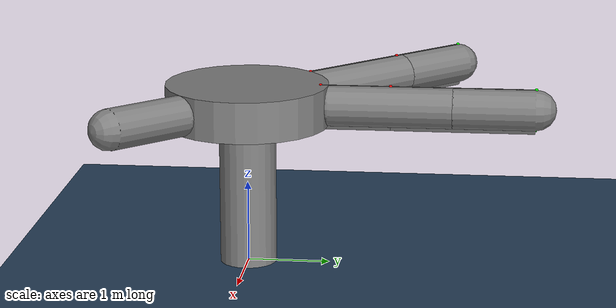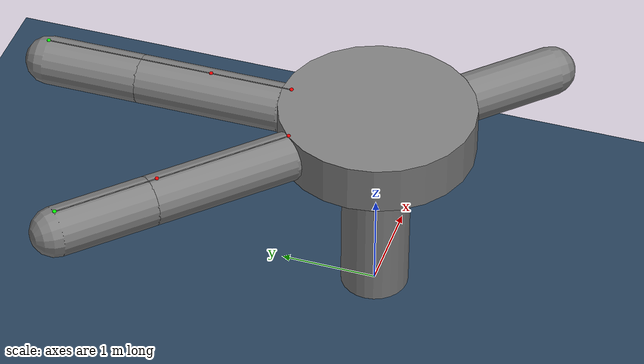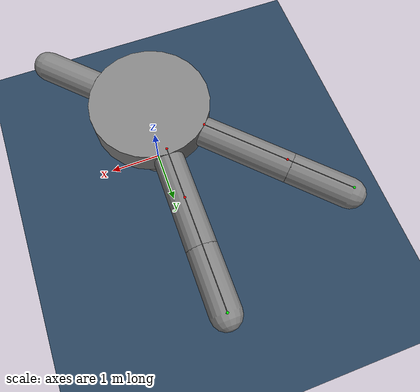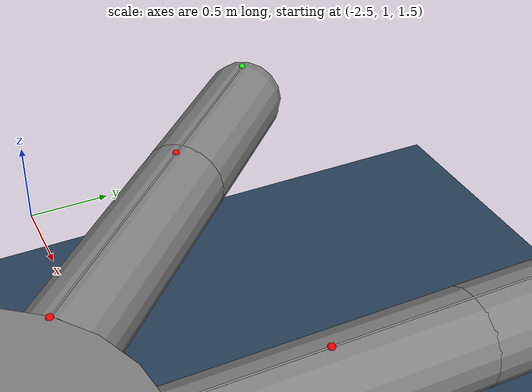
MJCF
<mujoco model="hand">
  <compiler angle="degree" coordinate="local"/>
  <option gravity="0 0 -9.81" integrator="RK4"/>

  <asset>
    <texture name="grid" type="2d" builtin="checker" rgb1=".1 .2 .3" rgb2=".2 .3 .4" width="300" height="300"/>
    <material name="grid" texture="grid" texrepeat="8 8" reflectance=".2"/>
  </asset>

  <worldbody>
    <geom size="10 10 .02" type="plane" material="grid" pos="0 0 0"/>
    <light pos="0 0 5"/>
    <camera name="camera" pos="0 -5 7" xyaxes="1 0 0 0 2 2"/>

    <!--  Forearm -->
    <body name="forearm" pos="0 0 0">
      <geom name="forearm" type="cylinder" pos="0 0 1" size="0.35 1"/>

        <!--  Hand  -->
        <body name="hand" pos="0 0 2">
          <joint name="wrist" type="hinge" damping="100" axis="1 0 0"/>
          <geom name="palm" type="cylinder" pos="0 0 0" size="1 0.25"/>
          <site name="finger1_str_base" pos="0 0.9 0.25" size="0.02" rgba="1 0 0 1"/>
          <site name="finger2_str_base" pos="-0.70 0.70 0.25" size="0.02" rgba="1 0 0 1"/>
          <site name="finger1_spr_base" pos="0 0.9 -0.25" size="0.02" rgba="1 0 0 1"/>
          <site name="finger2_spr_base" pos="-0.70 0.70 -0.25" size="0.02" rgba="1 0 0 1"/>

          <!--  Finger 1  -->
          <body name="finger1_pp" pos="0 1 0">
            <joint name="mpj1" type="hinge" axis="1 0 0" damping="10" range="0 90"/>
            <geom name="pp1" type="capsule" fromto="0 0 0 0 1.5 0" size="0.25"/>
            <site name="finger1_str_route1" pos="0 0.75 0.25" size="0.02" rgba="1 0 0 1"/>
            <site name="finger1_spr_route1" pos="0 0.75 -0.25" size="0.02" rgba="1 0 0 1"/>
              <body name="finger1_mp" pos="0 1.5 0">
                <joint name="pipj1" type="hinge" axis="1 0 0" damping="10" range="0 90"/>
                <geom name="mp1" type="capsule" fromto="0 0 0 0 1 0" size="0.25"/>
                <site name="finger1_str_tip" pos="0 1 0.25" size="0.02" rgba="0 1 0 1"/>
                <site name="finger1_spr_tip" pos="0 1 -0.25" size="0.02" rgba="0 1 0 1"/>
              </body>
          </body>

          <!--  Finger 2  -->
          <body name="finger2_pp" pos="-0.707 0.707 0">
            <joint name="mpj2" type="hinge" axis="0.866 0.5 0" damping="10" range="0 90"/>
            <geom name="pp2" type="capsule" fromto="0 0 0 -1.06 1.06 0" size="0.25"/>
            <site name="finger2_str_route1" pos="-1 1 0.25" size="0.02" rgba="1 0 0 1"/>
            <site name="finger2_spr_route1" pos="-1 1 -0.25" size="0.02" rgba="1 0 0 1"/>
              <body name="finger2_mp" pos="-1.06 1.06 0">
                <joint name="pipj2" type="hinge" axis="0.866 0.5 0" damping="10" range="0 90"/>
                <geom name="mp2" type="capsule" fromto="0 0 0 -0.707 0.707 0" size="0.25"/>
                <site name="finger2_str_tip" pos="-0.70 0.70 0.25" size="0.02" rgba="0 1 0 1"/>
                <site name="finger2_spr_tip" pos="-0.70 0.70 -0.25" size="0.02" rgba="0 1 0 1"/>
              </body>
          </body>

          <!--  Thumb  -->
          <body name="thumb_mc" pos="0 0 0">
            <joint name="cmcjt" type="hinge" axis="0 0 1" damping="10" range="0 45"/> <!--The range should be -90 -45-->
            <geom name="mct" type="capsule" fromto="0 0 0 0.707 -0.707 0" size="0.15"/>
                <body name="thumb_pp" pos="0.707 -0.707 0">
                  <joint name="mpjt" type="hinge" axis="0.866 0.5 0" damping="5" range="-90 0"/>
                  <joint name="abd/add" type="hinge" axis="1 0 0" range="-30 30" damping="5"/>
                  <geom name="ppt" type="capsule" fromto="0 0 0 0.707 -0.707 0" size="0.25"/>
                </body>
          </body>
        </body>
    </body>
  </worldbody>

  <!-- Tendons for active flexion -->
  <tendon>
    <spatial limited="true" range="0 0.6" width="0.005" name="flexor_finger1">
      <site site="finger1_str_base"/>
      <site site="finger1_str_route1"/>
      <site site="finger1_str_tip"/>
    </spatial>
  </tendon>

  <tendon>
    <spatial limited="true" range="0 0.6" width="0.005" name="flexor_finger2">
      <site site="finger2_str_base"/>
      <site site="finger2_str_route1"/>
      <site site="finger2_str_tip"/>
    </spatial>
  </tendon>

  <actuator>
    <motor name="motor_finger1" tendon="flexor_finger1" gear="1"/>
  </actuator>

  <actuator>
    <motor name="motor_finger2" tendon="flexor_finger2" gear="1"/>
  </actuator>

  <!-- Springs for passive extension -->
  <tendon>
    <spatial limited="true" range="0 0.6" springlength="0.55" stiffness="5" damping="5" width="0.05" name="extendor_finger1">
      <site site="finger1_spr_base"/>
      <site site="finger1_spr_route1"/>
      <site site="finger1_spr_tip"/>
    </spatial>

    <spatial limited="true" range="0 0.6" springlength="0.55" stiffness="5" damping="5" width="0.05" name="extendor_finger2">
      <site site="finger2_spr_base"/>
      <site site="finger2_spr_route1"/>
      <site site="finger2_spr_tip"/>
    </spatial>
  </tendon>

</mujoco>
